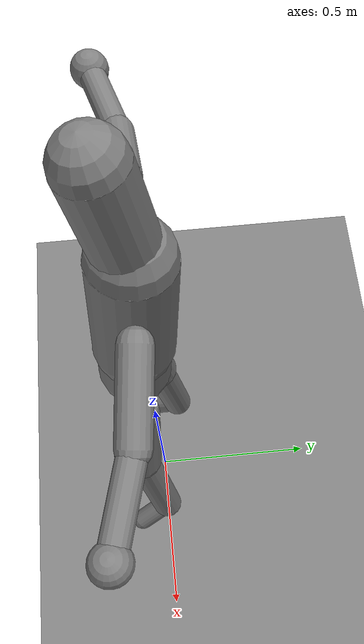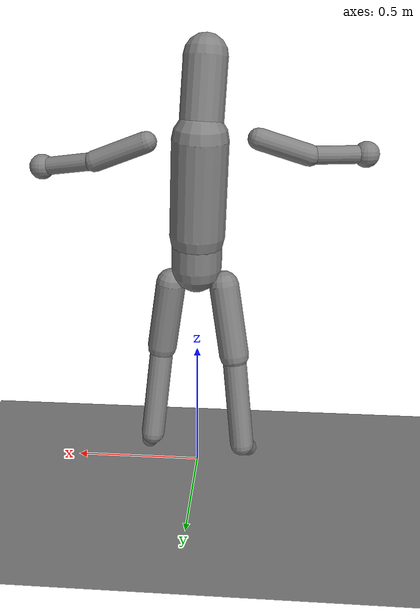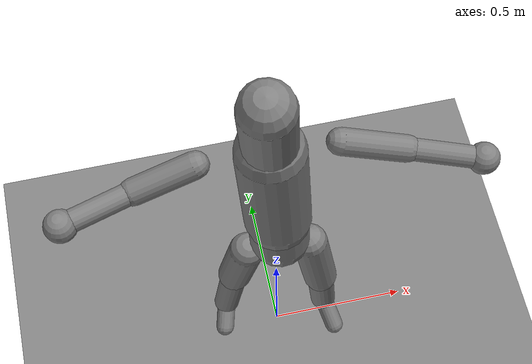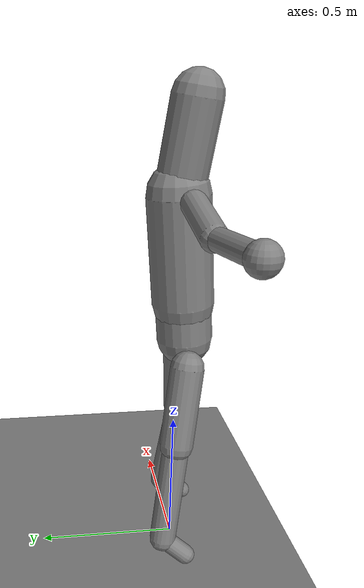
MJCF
<?xml version='1.0' encoding='utf-8'?>
<mujoco>
  <worldbody>
    <geom density="0" type="plane" size="20 20 1" pos="0 0 0" quat="-1 0 0 0" priority="0" contype="1" conaffinity="1" group="0" condim="3" solmix="1" solref="0.02 1" solimp="0.9 0.95 0.001" margin="0" gap="0" friction="1 0.05 0.05" fluidshape="none" fluidcoef="5 0.25 1.5 1 1" name="floor_0" />
    <body pos="0.00507 -0.0287 0.8311" quat="-1 0 0 0" gravcomp="0" name="Pelvis_1">
      <freejoint name="root_2" />
      <geom mass="9.871" type="capsule" size="0.0979 0.06611272" pos="-0.00188 0.005519999 0.06585503" quat="0.04414469 0.9456828 0.3220799 0" priority="0" contype="1" conaffinity="1" group="0" condim="3" solmix="1" solref="0.02 1" solimp="0.9 0.95 0.001" margin="0" gap="0" friction="1 0.05 0.05" fluidshape="none" fluidcoef="5 0.25 1.5 1 1" name="g_Pelvis_3" />
      <body pos="-0.00376 0.01104 0.13171" quat="-1 0 0 0" gravcomp="0" name="Torso_4">
        <joint type="hinge" pos="0 0 0" axis="1 0 0" ref="0" armature="0.2" springref="0" springdamper="0 0" damping="2" stiffness="0" solreflimit="0.02 1" solimplimit="0.9 0.95 0.001 0.5 2" solreffriction="0.02 1" solimpfriction="0.9 0.95 0.001 0.5 2" frictionloss="0" limited="true" margin="0" range="-26.40001 33.60002" name="Torso_pitch_7" />
        <joint type="hinge" pos="0 0 0" axis="-1.192093E-07 1 0" ref="0" armature="0.2" springref="0" springdamper="0 0" damping="2" stiffness="0" solreflimit="0.02 1" solimplimit="0.9 0.95 0.001 0.5 2" solreffriction="0.02 1" solimpfriction="0.9 0.95 0.001 0.5 2" frictionloss="0" limited="true" margin="0" range="-20.00001 20.00001" name="Torso_roll_8" />
        <joint type="hinge" pos="0 0 0" axis="1 0 0" ref="0" armature="0.2" springref="0" springdamper="0 0" damping="2" stiffness="0" solreflimit="0.02 1" solimplimit="0.9 0.95 0.001 0.5 2" solreffriction="0.02 1" solimpfriction="0.9 0.95 0.001 0.5 2" frictionloss="0" limited="true" margin="0" range="-34.99998 34.99998" name="Torso_yaw_9" />
        <geom mass="23.2674" type="capsule" size="0.1077 0.1847621" pos="-0.007245 0.01542 0.183975" quat="0.04615501 0.9041132 0.4247931 0" priority="0" contype="1" conaffinity="1" group="0" condim="3" solmix="1" solref="0.02 1" solimp="0.9 0.95 0.001" margin="0" gap="0" friction="1 0.05 0.05" fluidshape="none" fluidcoef="5 0.25 1.5 1 1" name="g_Torso_10" />
        <body pos="-0.01449 0.03084 0.36795" quat="-1 0 0 0" gravcomp="0" name="Head_11">
          <joint type="hinge" pos="0 0 0" axis="1 0 0" ref="0" armature="0.2" springref="0" springdamper="0 0" damping="2" stiffness="0" solreflimit="0.02 1" solimplimit="0.9 0.95 0.001 0.5 2" solreffriction="0.02 1" solimpfriction="0.9 0.95 0.001 0.5 2" frictionloss="0" limited="true" margin="0" range="-46.49999 33.49998" name="Head_pitch_24" />
          <joint type="hinge" pos="0 0 0" axis="-1.192093E-07 1 0" ref="0" armature="0.2" springref="0" springdamper="0 0" damping="2" stiffness="0" solreflimit="0.02 1" solimplimit="0.9 0.95 0.001 0.5 2" solreffriction="0.02 1" solimpfriction="0.9 0.95 0.001 0.5 2" frictionloss="0" limited="true" margin="0" range="-30.00002 30.00002" name="Head_roll_25" />
          <joint type="hinge" pos="0 0 0" axis="1 0 0" ref="0" armature="0.2" springref="0" springdamper="0 0" damping="2" stiffness="0" solreflimit="0.02 1" solimplimit="0.9 0.95 0.001 0.5 2" solreffriction="0.02 1" solimpfriction="0.9 0.95 0.001 0.5 2" frictionloss="0" limited="true" margin="0" range="-44.99999 44.99999" name="Head_yaw_26" />
          <geom mass="4.9355" type="capsule" size="0.0832 0.1494191" pos="-0.008210002 -0.02215 0.14754" quat="0.07929783 -0.9347093 0.3464541 0" priority="0" contype="1" conaffinity="1" group="0" condim="3" solmix="1" solref="0.02 1" solimp="0.9 0.95 0.001" margin="0" gap="0" friction="1 0.05 0.05" fluidshape="none" fluidcoef="5 0.25 1.5 1 1" name="g_Head_27" />
        </body>
        <body pos="0.1874 0.02632 0.3572701" quat="-1 0 0 0" gravcomp="0" name="UpperArmL_12">
          <joint type="hinge" pos="0 0 0" axis="1 0 0" ref="0" armature="0.2" springref="0" springdamper="0 0" damping="2" stiffness="0" solreflimit="0.02 1" solimplimit="0.9 0.95 0.001 0.5 2" solreffriction="0.02 1" solimpfriction="0.9 0.95 0.001 0.5 2" frictionloss="0" limited="true" margin="0" range="-60.00014 120.0003" name="UpperArmL_pitch_28" />
          <joint type="hinge" pos="0 0 0" axis="-1.192093E-07 1 0" ref="0" armature="0.2" springref="0" springdamper="0 0" damping="2" stiffness="0" solreflimit="0.02 1" solimplimit="0.9 0.95 0.001 0.5 2" solreffriction="0.02 1" solimpfriction="0.9 0.95 0.001 0.5 2" frictionloss="0" limited="true" margin="0" range="-103.7999 20.00001" name="UpperArmL_roll_29" />
          <joint type="hinge" pos="0 0 0" axis="1 0 0" ref="0" armature="0.2" springref="0" springdamper="0 0" damping="2" stiffness="0" solreflimit="0.02 1" solimplimit="0.9 0.95 0.001 0.5 2" solreffriction="0.02 1" solimpfriction="0.9 0.95 0.001 0.5 2" frictionloss="0" limited="true" margin="0" range="-46.59998 73.3999" name="UpperArmL_yaw_30" />
          <geom mass="2.1152" type="capsule" size="0.0411 0.107403" pos="0.09961 -0.011615 -0.03845" quat="0.8240138 -0.06562018 -0.5627569 0" priority="0" contype="1" conaffinity="1" group="0" condim="3" solmix="1" solref="0.02 1" solimp="0.9 0.95 0.001" margin="0" gap="0" friction="1 0.05 0.05" fluidshape="none" fluidcoef="5 0.25 1.5 1 1" name="g_UpperArmL_31" />
          <body pos="0.19922 -0.02323 -0.07690001" quat="-1 0 0 0" gravcomp="0" name="ForearmL_32">
            <joint type="hinge" pos="0 0 0" axis="1 0 0" ref="0" armature="0.2" springref="0" springdamper="0 0" damping="2" stiffness="0" solreflimit="0.02 1" solimplimit="0.9 0.95 0.001 0.5 2" solreffriction="0.02 1" solimpfriction="0.9 0.95 0.001 0.5 2" frictionloss="0" limited="true" margin="0" range="-20.00001 139.9999" name="ForearmL_pitch_44" />
            <geom mass="1.4102" type="capsule" size="0.0343 0.115608" pos="0.110085 -0.03068 -0.01747012" quat="0.7586551 -0.174902 -0.6275761 0" priority="0" contype="1" conaffinity="1" group="0" condim="3" solmix="1" solref="0.02 1" solimp="0.9 0.95 0.001" margin="0" gap="0" friction="1 0.05 0.05" fluidshape="none" fluidcoef="5 0.25 1.5 1 1" name="g_ForearmL_45" />
            <body pos="0.22017 -0.06136001 -0.03494" quat="-1 0 0 0" gravcomp="0" name="GloveL_46">
              <joint type="hinge" pos="0 0 0" axis="1 0 0" ref="0" armature="0.2" springref="0" springdamper="0 0" damping="2" stiffness="0" solreflimit="0.02 1" solimplimit="0.9 0.95 0.001 0.5 2" solreffriction="0.02 1" solimpfriction="0.9 0.95 0.001 0.5 2" frictionloss="0" limited="true" margin="0" range="-60.00014 60.00014" name="GloveL_pitch_56" />
              <joint type="hinge" pos="0 0 0" axis="1 0 0" ref="0" armature="0.2" springref="0" springdamper="0 0" damping="2" stiffness="0" solreflimit="0.02 1" solimplimit="0.9 0.95 0.001 0.5 2" solreffriction="0.02 1" solimpfriction="0.9 0.95 0.001 0.5 2" frictionloss="0" limited="true" margin="0" range="-24.99998 24.99998" name="GloveL_yaw_57" />
              <geom mass="0.7051" type="sphere" size="0.049" pos="0 0 0" quat="-1 0 0 0" priority="0" contype="1" conaffinity="1" group="0" condim="3" solmix="1" solref="0.02 1" solimp="0.9 0.95 0.001" margin="0" gap="0" friction="1 0.05 0.05" fluidshape="none" fluidcoef="5 0.25 1.5 1 1" name="g_GloveL_58" />
            </body>
          </body>
        </body>
        <body pos="-0.22849 0.03014 0.37475" quat="-1 0 0 0" gravcomp="0" name="UpperArmR_13">
          <joint type="hinge" pos="0 0 0" axis="1 0 0" ref="0" armature="0.2" springref="0" springdamper="0 0" damping="2" stiffness="0" solreflimit="0.02 1" solimplimit="0.9 0.95 0.001 0.5 2" solreffriction="0.02 1" solimpfriction="0.9 0.95 0.001 0.5 2" frictionloss="0" limited="true" margin="0" range="-60.00014 120.0003" name="UpperArmR_pitch_33" />
          <joint type="hinge" pos="0 0 0" axis="-1.192093E-07 1 0" ref="0" armature="0.2" springref="0" springdamper="0 0" damping="2" stiffness="0" solreflimit="0.02 1" solimplimit="0.9 0.95 0.001 0.5 2" solreffriction="0.02 1" solimpfriction="0.9 0.95 0.001 0.5 2" frictionloss="0" limited="true" margin="0" range="-20.00001 94.30025" name="UpperArmR_roll_34" />
          <joint type="hinge" pos="0 0 0" axis="1 0 0" ref="0" armature="0.2" springref="0" springdamper="0 0" damping="2" stiffness="0" solreflimit="0.02 1" solimplimit="0.9 0.95 0.001 0.5 2" solreffriction="0.02 1" solimpfriction="0.9 0.95 0.001 0.5 2" frictionloss="0" limited="true" margin="0" range="-72.09987 47.90002" name="UpperArmR_yaw_35" />
          <geom mass="2.1152" type="capsule" size="0.0411 0.09752232" pos="-0.09261502 -0.007160001 -0.02969503" quat="0.8076183 -0.04545411 0.5879512 0" priority="0" contype="1" conaffinity="1" group="0" condim="3" solmix="1" solref="0.02 1" solimp="0.9 0.95 0.001" margin="0" gap="0" friction="1 0.05 0.05" fluidshape="none" fluidcoef="5 0.25 1.5 1 1" name="g_UpperArmR_36" />
          <body pos="-0.18523 -0.01432 -0.05938995" quat="-1 0 0 0" gravcomp="0" name="ForearmR_37">
            <joint type="hinge" pos="0 0 0" axis="1 0 0" ref="0" armature="0.2" springref="0" springdamper="0 0" damping="2" stiffness="0" solreflimit="0.02 1" solimplimit="0.9 0.95 0.001 0.5 2" solreffriction="0.02 1" solimpfriction="0.9 0.95 0.001 0.5 2" frictionloss="0" limited="true" margin="0" range="-20.00001 139.9999" name="ForearmR_pitch_47" />
            <geom mass="1.4102" type="capsule" size="0.03430001 0.110818" pos="-0.106595 -0.03025 -0.001754999" quat="0.712684 -0.191508 0.674838 0" priority="0" contype="1" conaffinity="1" group="0" condim="3" solmix="1" solref="0.02 1" solimp="0.9 0.95 0.001" margin="0" gap="0" friction="1 0.05 0.05" fluidshape="none" fluidcoef="5 0.25 1.5 1 1" name="g_ForearmR_48" />
            <body pos="-0.21319 -0.0605 -0.003509998" quat="-1 0 0 0" gravcomp="0" name="GloveR_49">
              <joint type="hinge" pos="0 0 0" axis="1 0 0" ref="0" armature="0.2" springref="0" springdamper="0 0" damping="2" stiffness="0" solreflimit="0.02 1" solimplimit="0.9 0.95 0.001 0.5 2" solreffriction="0.02 1" solimpfriction="0.9 0.95 0.001 0.5 2" frictionloss="0" limited="true" margin="0" range="-60.00014 60.00014" name="GloveR_pitch_59" />
              <joint type="hinge" pos="0 0 0" axis="1 0 0" ref="0" armature="0.2" springref="0" springdamper="0 0" damping="2" stiffness="0" solreflimit="0.02 1" solimplimit="0.9 0.95 0.001 0.5 2" solreffriction="0.02 1" solimpfriction="0.9 0.95 0.001 0.5 2" frictionloss="0" limited="true" margin="0" range="-24.99998 24.99998" name="GloveR_yaw_60" />
              <geom mass="0.7051" type="sphere" size="0.049" pos="0 0 0" quat="-1 0 0 0" priority="0" contype="1" conaffinity="1" group="0" condim="3" solmix="1" solref="0.02 1" solimp="0.9 0.95 0.001" margin="0" gap="0" friction="1 0.05 0.05" fluidshape="none" fluidcoef="5 0.25 1.5 1 1" name="g_GloveR_61" />
            </body>
          </body>
        </body>
      </body>
      <body pos="0.10138 -0.004339999 -0.06923997" quat="-1 0 0 0" gravcomp="0" name="ThighL_5">
        <joint type="hinge" pos="0 0 0" axis="1 0 0" ref="0" armature="0.2" springref="0" springdamper="0 0" damping="2" stiffness="0" solreflimit="0.02 1" solimplimit="0.9 0.95 0.001 0.5 2" solreffriction="0.02 1" solimpfriction="0.9 0.95 0.001 0.5 2" frictionloss="0" limited="true" margin="0" range="-97.99985 31.99998" name="ThighL_pitch_14" />
        <joint type="hinge" pos="0 0 0" axis="-1.192093E-07 1 0" ref="0" armature="0.2" springref="0" springdamper="0 0" damping="2" stiffness="0" solreflimit="0.02 1" solimplimit="0.9 0.95 0.001 0.5 2" solreffriction="0.02 1" solimpfriction="0.9 0.95 0.001 0.5 2" frictionloss="0" limited="true" margin="0" range="-20.00001 44.99999" name="ThighL_roll_15" />
        <joint type="hinge" pos="0 0 0" axis="1 0 0" ref="0" armature="0.2" springref="0" springdamper="0 0" damping="2" stiffness="0" solreflimit="0.02 1" solimplimit="0.9 0.95 0.001 0.5 2" solreffriction="0.02 1" solimpfriction="0.9 0.95 0.001 0.5 2" frictionloss="0" limited="true" margin="0" range="-30.00002 30.00002" name="ThighL_yaw_16" />
        <geom mass="8.1083" type="capsule" size="0.05880001 0.140292" pos="0.020735 -0.008670002 -0.13848" quat="0.996766 -0.0310001 -0.0741393 0" priority="0" contype="1" conaffinity="1" group="0" condim="3" solmix="1" solref="0.02 1" solimp="0.9 0.95 0.001" margin="0" gap="0" friction="1 0.05 0.05" fluidshape="none" fluidcoef="5 0.25 1.5 1 1" name="g_ThighL_17" />
        <body pos="0.04147 -0.01734 -0.27696" quat="-1 0 0 0" gravcomp="0" name="ShinL_18">
          <joint type="hinge" pos="0 0 0" axis="1 0 0" ref="0" armature="0.2" springref="0" springdamper="0 0" damping="2" stiffness="0" solreflimit="0.02 1" solimplimit="0.9 0.95 0.001 0.5 2" solreffriction="0.02 1" solimpfriction="0.9 0.95 0.001 0.5 2" frictionloss="0" limited="true" margin="0" range="-10 134.1002" name="ShinL_pitch_38" />
          <geom mass="3.5254" type="capsule" size="0.047 0.18687" pos="0.01880001 0.025315 -0.18419" quat="0.9964088 0.06797849 -0.05048379 0" priority="0" contype="1" conaffinity="1" group="0" condim="3" solmix="1" solref="0.02 1" solimp="0.9 0.95 0.001" margin="0" gap="0" friction="1 0.05 0.05" fluidshape="none" fluidcoef="5 0.25 1.5 1 1" name="g_ShinL_39" />
          <body pos="0.0376 0.05063 -0.36838" quat="-1 0 0 0" gravcomp="0" name="FootL_40">
            <joint type="hinge" pos="0 0 0" axis="1 0 0" ref="0" armature="0.2" springref="0" springdamper="0 0" damping="2" stiffness="0" solreflimit="0.02 1" solimplimit="0.9 0.95 0.001 0.5 2" solreffriction="0.02 1" solimpfriction="0.9 0.95 0.001 0.5 2" frictionloss="0" limited="true" margin="0" range="-18.5 46.49999" name="FootL_pitch_50" />
            <joint type="hinge" pos="0 0 0" axis="-1.192093E-07 1 0" ref="0" armature="0.2" springref="0" springdamper="0 0" damping="2" stiffness="0" solreflimit="0.02 1" solimplimit="0.9 0.95 0.001 0.5 2" solreffriction="0.02 1" solimpfriction="0.9 0.95 0.001 0.5 2" frictionloss="0" limited="true" margin="0" range="-35.80001 10" name="FootL_roll_51" />
            <geom mass="1.0576" type="capsule" size="0.0343 0.06302359" pos="0.01335999 -0.04585 -0.04112506" quat="0.9089921 -0.4001711 -0.116604 0" priority="0" contype="1" conaffinity="1" group="0" condim="3" solmix="1" solref="0.02 1" solimp="0.9 0.95 0.001" margin="0" gap="0" friction="1 0.05 0.05" fluidshape="none" fluidcoef="5 0.25 1.5 1 1" name="g_FootL_52" />
          </body>
        </body>
      </body>
      <body pos="-0.10876 0.00949 -0.06923997" quat="-1 0 0 0" gravcomp="0" name="ThighR_6">
        <joint type="hinge" pos="0 0 0" axis="1 0 0" ref="0" armature="0.2" springref="0" springdamper="0 0" damping="2" stiffness="0" solreflimit="0.02 1" solimplimit="0.9 0.95 0.001 0.5 2" solreffriction="0.02 1" solimpfriction="0.9 0.95 0.001 0.5 2" frictionloss="0" limited="true" margin="0" range="-117.1 12.89997" name="ThighR_pitch_19" />
        <joint type="hinge" pos="0 0 0" axis="-1.192093E-07 1 0" ref="0" armature="0.2" springref="0" springdamper="0 0" damping="2" stiffness="0" solreflimit="0.02 1" solimplimit="0.9 0.95 0.001 0.5 2" solreffriction="0.02 1" solimpfriction="0.9 0.95 0.001 0.5 2" frictionloss="0" limited="true" margin="0" range="-49.29998 15.70002" name="ThighR_roll_20" />
        <joint type="hinge" pos="0 0 0" axis="1 0 0" ref="0" armature="0.2" springref="0" springdamper="0 0" damping="2" stiffness="0" solreflimit="0.02 1" solimplimit="0.9 0.95 0.001 0.5 2" solreffriction="0.02 1" solimpfriction="0.9 0.95 0.001 0.5 2" frictionloss="0" limited="true" margin="0" range="-30.00002 30.00002" name="ThighR_yaw_21" />
        <geom mass="8.1083" type="capsule" size="0.0588 0.141515" pos="-0.02212501 0.01898 -0.13848" quat="0.9946241 0.06742251 0.07859451 0" priority="0" contype="1" conaffinity="1" group="0" condim="3" solmix="1" solref="0.02 1" solimp="0.9 0.95 0.001" margin="0" gap="0" friction="1 0.05 0.05" fluidshape="none" fluidcoef="5 0.25 1.5 1 1" name="g_ThighR_22" />
        <body pos="-0.04425 0.03796 -0.27696" quat="-1 0 0 0" gravcomp="0" name="ShinR_23">
          <joint type="hinge" pos="0 0 0" axis="1 0 0" ref="0" armature="0.2" springref="0" springdamper="0 0" damping="2" stiffness="0" solreflimit="0.02 1" solimplimit="0.9 0.95 0.001 0.5 2" solreffriction="0.02 1" solimpfriction="0.9 0.95 0.001 0.5 2" frictionloss="0" limited="true" margin="0" range="-10 130.0001" name="ShinR_pitch_41" />
          <geom mass="3.5254" type="capsule" size="0.047 0.186572" pos="-0.01880001 0.023015 -0.18419" quat="0.9968032 0.06187642 0.05054431 0" priority="0" contype="1" conaffinity="1" group="0" condim="3" solmix="1" solref="0.02 1" solimp="0.9 0.95 0.001" margin="0" gap="0" friction="1 0.05 0.05" fluidshape="none" fluidcoef="5 0.25 1.5 1 1" name="g_ShinR_42" />
          <body pos="-0.0376 0.04603 -0.36838" quat="-1 0 0 0" gravcomp="0" name="FootR_43">
            <joint type="hinge" pos="0 0 0" axis="1 0 0" ref="0" armature="0.2" springref="0" springdamper="0 0" damping="2" stiffness="0" solreflimit="0.02 1" solimplimit="0.9 0.95 0.001 0.5 2" solreffriction="0.02 1" solimpfriction="0.9 0.95 0.001 0.5 2" frictionloss="0" limited="true" margin="0" range="-25.59998 39.40002" name="FootR_pitch_53" />
            <joint type="hinge" pos="0 0 0" axis="-1.192093E-07 1 0" ref="0" armature="0.2" springref="0" springdamper="0 0" damping="2" stiffness="0" solreflimit="0.02 1" solimplimit="0.9 0.95 0.001 0.5 2" solreffriction="0.02 1" solimpfriction="0.9 0.95 0.001 0.5 2" frictionloss="0" limited="true" margin="0" range="-17.69999 22.29997" name="FootR_roll_54" />
            <geom mass="1.0576" type="capsule" size="0.0343 0.0521293" pos="-0.012355 -0.04049 -0.03042006" quat="0.8898171 -0.436451 0.133177 0" priority="0" contype="1" conaffinity="1" group="0" condim="3" solmix="1" solref="0.02 1" solimp="0.9 0.95 0.001" margin="0" gap="0" friction="1 0.05 0.05" fluidshape="none" fluidcoef="5 0.25 1.5 1 1" name="g_FootR_55" />
          </body>
        </body>
      </body>
    </body>
  </worldbody>
  <contact />
  <tendon />
  <equality />
  <actuator>
    <position joint="Torso_pitch_7" ctrllimited="true" forcelimited="true" ctrlrange="-0.461437 0.58576" forcerange="-150 150" lengthrange="0 0" gear="1" kp="400" kv="78.00794" name="a_Torso_pitch_62" />
    <position joint="Torso_roll_8" ctrllimited="true" forcelimited="true" ctrlrange="-0.349066 0.349066" forcerange="-100 100" lengthrange="0 0" gear="1" kp="400" kv="93.6649548" name="a_Torso_roll_63" />
    <position joint="Torso_yaw_9" ctrllimited="true" forcelimited="true" ctrlrange="-0.610865 0.610865" forcerange="-60 60" lengthrange="0 0" gear="1" kp="400" kv="57.5106377" name="a_Torso_yaw_64" />
    <position joint="Head_pitch_24" ctrllimited="true" forcelimited="true" ctrlrange="-0.811622 0.584642" forcerange="-15 15" lengthrange="0 0" gear="1" kp="60" kv="9.65821823" name="a_Head_pitch_65" />
    <position joint="Head_roll_25" ctrllimited="true" forcelimited="true" ctrlrange="-0.523599 0.523599" forcerange="-10 10" lengthrange="0 0" gear="1" kp="60" kv="9.61737751" name="a_Head_roll_66" />
    <position joint="Head_yaw_26" ctrllimited="true" forcelimited="true" ctrlrange="-0.785398 0.785398" forcerange="-8 8" lengthrange="0 0" gear="1" kp="60" kv="7.27432294" name="a_Head_yaw_67" />
    <position joint="ThighL_pitch_14" ctrllimited="true" forcelimited="true" ctrlrange="-1.71033 0.558594" forcerange="-140 200" lengthrange="0 0" gear="1" kp="500" kv="59.3072818" name="a_ThighL_pitch_68" />
    <position joint="ThighL_roll_15" ctrllimited="true" forcelimited="true" ctrlrange="-0.349066 0.785398" forcerange="-80 80" lengthrange="0 0" gear="1" kp="500" kv="59.7140154" name="a_ThighL_roll_69" />
    <position joint="ThighL_yaw_16" ctrllimited="true" forcelimited="true" ctrlrange="-0.523599 0.523599" forcerange="-40 40" lengthrange="0 0" gear="1" kp="500" kv="22.3213084" name="a_ThighL_yaw_70" />
    <position joint="ShinL_pitch_38" ctrllimited="true" forcelimited="true" ctrlrange="-0.174533 2.34005" forcerange="-200 100" lengthrange="0 0" gear="1" kp="400" kv="29.9283136" name="a_ShinL_pitch_71" />
    <position joint="FootL_pitch_50" ctrllimited="true" forcelimited="true" ctrlrange="-0.322247 0.812217" forcerange="-45 120" lengthrange="0 0" gear="1" kp="200" kv="12.864475" name="a_FootL_pitch_72" />
    <position joint="FootL_roll_51" ctrllimited="true" forcelimited="true" ctrlrange="-0.625602 0.174533" forcerange="-20 20" lengthrange="0 0" gear="1" kp="200" kv="12.7650781" name="a_FootL_roll_73" />
    <position joint="ThighR_pitch_19" ctrllimited="true" forcelimited="true" ctrlrange="-2.04419 0.224738" forcerange="-140 200" lengthrange="0 0" gear="1" kp="500" kv="59.337487" name="a_ThighR_pitch_74" />
    <position joint="ThighR_roll_20" ctrllimited="true" forcelimited="true" ctrlrange="-0.860161 0.274303" forcerange="-80 80" lengthrange="0 0" gear="1" kp="500" kv="59.4829031" name="a_ThighR_roll_75" />
    <position joint="ThighR_yaw_21" ctrllimited="true" forcelimited="true" ctrlrange="-0.523599 0.523599" forcerange="-40 40" lengthrange="0 0" gear="1" kp="500" kv="23.2050803" name="a_ThighR_yaw_76" />
    <position joint="ShinR_pitch_41" ctrllimited="true" forcelimited="true" ctrlrange="-0.174533 2.26893" forcerange="-200 100" lengthrange="0 0" gear="1" kp="400" kv="29.6517023" name="a_ShinR_pitch_77" />
    <position joint="FootR_pitch_53" ctrllimited="true" forcelimited="true" ctrlrange="-0.446743 0.687721" forcerange="-45 120" lengthrange="0 0" gear="1" kp="200" kv="12.8048859" name="a_FootR_pitch_78" />
    <position joint="FootR_roll_54" ctrllimited="true" forcelimited="true" ctrlrange="-0.309741 0.388391" forcerange="-20 20" lengthrange="0 0" gear="1" kp="200" kv="12.7254665" name="a_FootR_roll_79" />
    <position joint="UpperArmL_pitch_28" ctrllimited="true" forcelimited="true" ctrlrange="-1.0472 2.0944" forcerange="-60 60" lengthrange="0 0" gear="1" kp="100" kv="9.79058627" name="a_UpperArmL_pitch_80" />
    <position joint="UpperArmL_roll_29" ctrllimited="true" forcelimited="true" ctrlrange="-1.81162 0.349066" forcerange="-60 60" lengthrange="0 0" gear="1" kp="100" kv="14.5288369" name="a_UpperArmL_roll_81" />
    <position joint="UpperArmL_yaw_30" ctrllimited="true" forcelimited="true" ctrlrange="-0.812783 1.28161" forcerange="-25 25" lengthrange="0 0" gear="1" kp="100" kv="14.305809" name="a_UpperArmL_yaw_82" />
    <position joint="ForearmL_pitch_44" ctrllimited="true" forcelimited="true" ctrlrange="-0.349066 2.44346" forcerange="-40 60" lengthrange="0 0" gear="1" kp="60" kv="7.05800544" name="a_ForearmL_pitch_83" />
    <position joint="GloveL_pitch_56" ctrllimited="true" forcelimited="true" ctrlrange="-1.0472 1.0472" forcerange="-10 10" lengthrange="0 0" gear="1" kp="20" kv="4.00676606" name="a_GloveL_pitch_84" />
    <position joint="GloveL_yaw_57" ctrllimited="true" forcelimited="true" ctrlrange="-0.436332 0.436332" forcerange="-5 5" lengthrange="0 0" gear="1" kp="20" kv="4.00676606" name="a_GloveL_yaw_85" />
    <position joint="UpperArmR_pitch_33" ctrllimited="true" forcelimited="true" ctrlrange="-1.0472 2.0944" forcerange="-60 60" lengthrange="0 0" gear="1" kp="100" kv="9.41467803" name="a_UpperArmR_pitch_86" />
    <position joint="UpperArmR_roll_34" ctrllimited="true" forcelimited="true" ctrlrange="-0.349066 1.64511" forcerange="-60 60" lengthrange="0 0" gear="1" kp="100" kv="13.8716372" name="a_UpperArmR_roll_87" />
    <position joint="UpperArmR_yaw_35" ctrllimited="true" forcelimited="true" ctrlrange="-1.25913 0.835261" forcerange="-25 25" lengthrange="0 0" gear="1" kp="100" kv="13.8229246" name="a_UpperArmR_yaw_88" />
    <position joint="ForearmR_pitch_47" ctrllimited="true" forcelimited="true" ctrlrange="-0.349066 2.44346" forcerange="-40 60" lengthrange="0 0" gear="1" kp="60" kv="7.03080495" name="a_ForearmR_pitch_89" />
    <position joint="GloveR_pitch_59" ctrllimited="true" forcelimited="true" ctrlrange="-1.0472 1.0472" forcerange="-10 10" lengthrange="0 0" gear="1" kp="20" kv="4.00676606" name="a_GloveR_pitch_90" />
    <position joint="GloveR_yaw_60" ctrllimited="true" forcelimited="true" ctrlrange="-0.436332 0.436332" forcerange="-5 5" lengthrange="0 0" gear="1" kp="20" kv="4.00676606" name="a_GloveR_yaw_91" />
  </actuator>
  <sensor>
    <framepos objtype="xbody" objname="FootL_40" cutoff="0" name="s_FootL_pos_92" />
    <framepos objtype="xbody" objname="FootR_43" cutoff="0" name="s_FootR_pos_93" />
    <framepos objtype="xbody" objname="Head_11" cutoff="0" name="s_Head_pos_94" />
    <framezaxis objtype="xbody" objname="Pelvis_1" cutoff="0" name="s_Pelvis_up_95" />
    <subtreecom body="Pelvis_1" cutoff="0" name="s_com_96" />
  </sensor>
  <compiler coordinate="local" />
  <option gravity="0 0 -9.81" timestep="0.004999993" />
  <option impratio="1" magnetic="0 0 0" wind="0 0 0" density="0" viscosity="0" o_margin="0" o_solref="0.02 1" o_solimp="0.9 0.95 0.001 0.5 2" integrator="implicitfast" cone="pyramidal" jacobian="auto" solver="Newton" iterations="20" tolerance="1E-08" noslip_iterations="0" noslip_tolerance="1E-06" ccd_iterations="50" ccd_tolerance="1E-06">
    <flag constraint="enable" equality="enable" frictionloss="enable" limit="enable" contact="enable" spring="enable" damper="enable" gravity="enable" clampctrl="enable" warmstart="enable" filterparent="enable" actuation="enable" refsafe="enable" override="disable" energy="disable" fwdinv="disable" multiccd="disable" />
  </option>
  <size memory="-1" />
  <custom />
  <asset />
</mujoco>
